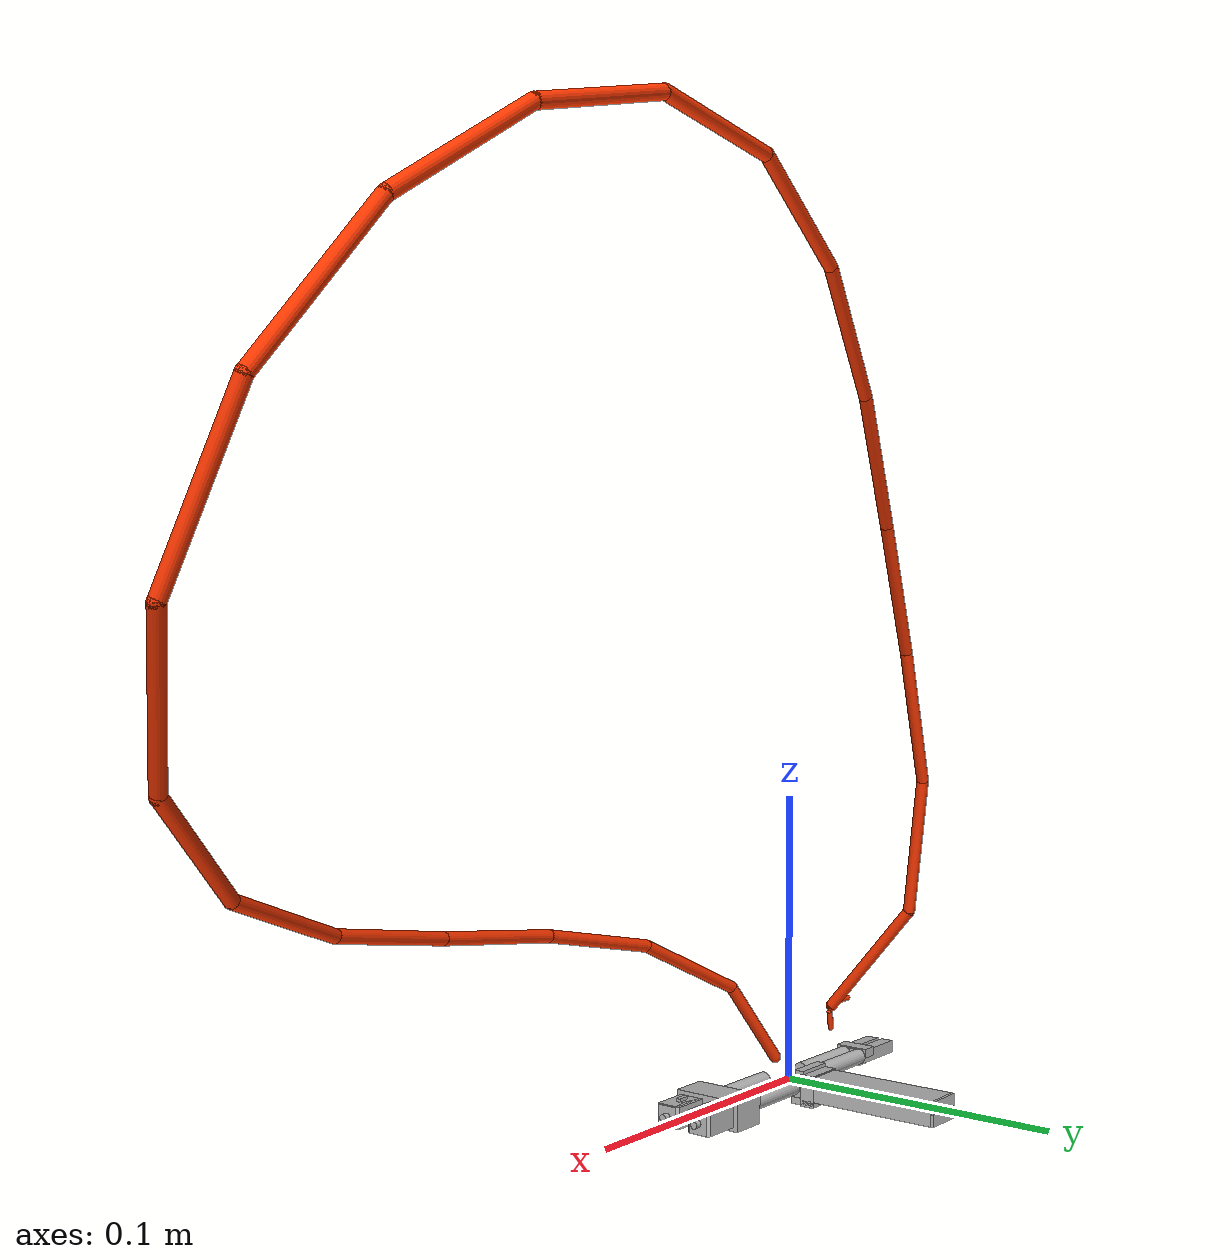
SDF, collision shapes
<?xml version="1.0" ?>
<sdf version="1.9">
  <model name="sfp_sc_cable">
    <include merge="true">
      <!--
         A few links in cable intersect with gripper palm.
         Workaround this by removing their collisions.
      -->
      <experimental:params>
        <collision element_id="link_1::link_1_collision" action="modify">
          <pose>0 0 0.006 0 0 0</pose>
          <geometry>
            <capsule>
              <length>0.032</length>
              <radius>0.002</radius>
            </capsule>
          </geometry>
          <surface>
            <friction>
              <torsional>
                <coefficient>0.05</coefficient>
              </torsional>
              <bullet>
                <friction>0.05</friction>
                <friction2>0.05</friction2>
              </bullet>
            </friction>
          </surface>
        </collision>
        <collision element_id="cable_end_0::base_collision" action="remove"/>
        <collision element_id="cable_connection_0::collision_0" action="remove"/>
        <collision element_id="cable_connection_0::collision_1" action="remove"/>
      </experimental:params>
      <uri>model://cable_base_c_rotated_phase_1</uri>
    </include>
    <include merge="true">
      <!--
         Some collisions in LC Plug intersect with gripper fingers on startup
         Workaround this by removing those collisions.
      -->
      <experimental:params>
        <collision element_id="lc_plug_link::1af02-003-ma2_collider_cylinder" action="remove"/>
        <collision element_id="lc_plug_link::1af02-003-ma2001_collider_cylinder" action="remove"/>
        <collision element_id="lc_plug_link::cube_collider_box.002" action="remove"/>
        <collision element_id="lc_plug_link::cube_collider_box.003" action="remove"/>
        <collision element_id="lc_plug_link::cube001_collider_box.002" action="remove"/>
        <collision element_id="lc_plug_link::cube001_collider_box.003" action="remove"/>
      </experimental:params>
      <uri>model://LC Plug</uri>
      <pose relative_to="cable_connection_0">-0.041 0 0 0 0 1.57079</pose>
    </include>
    <include merge="true">
      <uri>model://SC Plug</uri>
      <pose relative_to="cable_connection_1">0.052 0 0 0 0 0.0</pose>
    </include>
    <include merge="true">
      <!--
         Some collisions in SFP Module intersect with gripper fingers on startup
         Workaround this by removing those collisions.
      -->
      <experimental:params>
        <collision element_id="sfp_module_link::port_collider_box" action="remove"/>
        <collision element_id="sfp_module_link::port_collider_box.001" action="remove"/>
        <collision element_id="sfp_module_link::port_collider_box.002" action="remove"/>
        <collision element_id="sfp_module_link::port_collider_box.003" action="remove"/>
        <collision element_id="sfp_module_link::port_collider_box.004" action="remove"/>
        <collision element_id="sfp_module_link::port_collider_box.005" action="remove"/>
        <collision element_id="sfp_module_link::port_collider_box.006" action="remove"/>
        <collision element_id="sfp_module_link::port_collider_box.007" action="remove"/>
        <collision element_id="sfp_module_link::latch_collider_box" action="remove"/>
        <collision element_id="sfp_module_link::latch_collider_box.001" action="remove"/>
        <collision element_id="sfp_module_link::latch_collider_box.002" action="remove"/>
        <collision element_id="sfp_module_link::latch_collider_box.003" action="remove"/>
        <collision element_id="sfp_module_link::head_collider_box" action="remove"/>
        <collision element_id="sfp_module_link::head_collider_box.001" action="remove"/>
        <collision element_id="sfp_module_link::head_collider_box.002" action="remove"/>
        <collision element_id="sfp_module_link::head_collider_box.003" action="remove"/>
      </experimental:params>
      <uri>model://SFP Module</uri>
      <pose relative_to="lc_plug_link">0 0.0384 0 0 3.14159 3.14159</pose>
    </include>
    <joint name="plug_0_joint" type="fixed">
      <parent>cable_connection_0</parent>
      <child>lc_plug_link</child>
    </joint>
    <joint name="plug_1_joint" type="fixed">
      <parent>cable_connection_1</parent>
      <child>sc_plug_link</child>
    </joint>
    <joint name="sfp_module_joint" type="fixed">
      <parent>lc_plug_link</parent>
      <child>sfp_module_link</child>
    </joint>
  </model>

</sdf>

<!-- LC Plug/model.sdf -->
<sdf version="1.9">
  <model name="LC Plug">
    <link name="lc_plug_link">
      <inertial auto="true">
        <mass>0.010</mass>
      </inertial>
      <visual name="lc_plug_visual">
        <geometry>
          <mesh>
            <uri>lc_plug_visual.glb</uri>
          </mesh>
        </geometry>
      </visual>
      <collision name="cube_collider_box.003">
        <pose>0.003125 0.0097 0.0 -1.570796 1.570796 0.0</pose>
        <geometry>
          <box>
            <size>0.0045 0.0045 0.02</size>
          </box>
        </geometry>
      </collision>
      <collision name="cube_collider_box.002">
        <pose>-0.003125 0.0097 -0.0 -1.570796 1.570796 0.0</pose>
        <geometry>
          <box>
            <size>0.0045 0.0045 0.02</size>
          </box>
        </geometry>
      </collision>
      <collision name="cube001_collider_box.003">
        <pose>-0.0 0.002503 0.001434 -0.0 3.141593 -0.0</pose>
        <geometry>
          <box>
            <size>0.012353 0.0056 0.00325</size>
          </box>
        </geometry>
      </collision>
      <collision name="cube001_collider_box.002">
        <pose>-0.0 0.002503 -0.000413 -0.0 3.141593 -0.0</pose>
        <geometry>
          <box>
            <size>0.00665 0.0056 0.006032</size>
          </box>
        </geometry>
      </collision>
      <collision name="cylinder001_collider_cylinder.001">
        <pose>0.003125 0.0197 0.0 1.570796 0.0 0.0</pose>
        <geometry>
          <cylinder>
            <radius>0.000625</radius>
            <length>0.003004</length>
          </cylinder>
        </geometry>
      </collision>
      <collision name="cylinder_collider_cylinder.001">
        <pose>-0.003125 0.0197 0.0 1.570796 0.0 0.0</pose>
        <geometry>
          <cylinder>
            <radius>0.000625</radius>
            <length>0.003004</length>
          </cylinder>
        </geometry>
      </collision>
      <collision name="1af02-003-ma2_collider_cylinder">
        <pose>0.003125 -0.014628 -0.0 -1.570796 -0.0 -0.0</pose>
        <geometry>
          <cylinder>
            <radius>0.002794</radius>
            <length>0.028702</length>
          </cylinder>
        </geometry>
      </collision>
      <collision name="1af02-003-ma2001_collider_cylinder">
        <pose>-0.003125 -0.014628 -0.0 -1.570796 -0.0 -0.0</pose>
        <geometry>
          <cylinder>
            <radius>0.002794</radius>
            <length>0.028702</length>
          </cylinder>
        </geometry>
      </collision>
    </link>
  </model>
</sdf>

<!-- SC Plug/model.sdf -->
<sdf version="1.9">
  <model name="SC Plug">
    <link name="sc_plug_link">
      <inertial auto="true">
        <mass>0.04</mass>
      </inertial>
      <visual name="sc_plug_visual">
        <geometry>
          <mesh>
            <uri>sc_plug_visual.glb</uri>
          </mesh>
        </geometry>
      </visual>
      <collision name="housing blue_predeterminado005_collider_box">
        <pose>0.002038 0.006344 4e-06 0.0 0.0 0.0</pose>
        <geometry>
          <box>
            <size>0.012721 0.009 0.0073</size>
          </box>
        </geometry>
      </collision>
      <collision name="housing blue_predeterminado005_collider_box.001">
        <pose>0.002038 -0.006344 4e-06 0.0 0.0 0.0</pose>
        <geometry>
          <box>
            <size>0.012721 0.009 0.0073</size>
          </box>
        </geometry>
      </collision>
      <collision name="housing blue_predeterminado005_collider_box.002">
        <pose>0.002539 0.006344 4e-06 0.0 0.0 0.0</pose>
        <geometry>
          <box>
            <size>0.013722 0.007 0.0073</size>
          </box>
        </geometry>
      </collision>
      <collision name="housing blue_predeterminado005_collider_box.003">
        <pose>0.002539 -0.006344 4e-06 0.0 0.0 0.0</pose>
        <geometry>
          <box>
            <size>0.013722 0.007 0.0073</size>
          </box>
        </geometry>
      </collision>
      <collision name="housing blue_predeterminado005_collider_box.004">
        <pose>0.008191 0.003056 4e-06 0.0 -0.0 -0.785398</pose>
        <geometry>
          <box>
            <size>0.002 0.00141 0.0073</size>
          </box>
        </geometry>
      </collision>
      <collision name="housing blue_predeterminado005_collider_box.005">
        <pose>0.008191 0.009636 4e-06 0.0 -0.0 0.785398</pose>
        <geometry>
          <box>
            <size>0.002 0.00141 0.0073</size>
          </box>
        </geometry>
      </collision>
      <collision name="housing blue_predeterminado005_collider_box.006">
        <pose>0.008191 -0.009636 4e-06 0.0 -0.0 -0.785398</pose>
        <geometry>
          <box>
            <size>0.002 0.00141 0.0073</size>
          </box>
        </geometry>
      </collision>
      <collision name="housing blue_predeterminado005_collider_box.007">
        <pose>0.008191 -0.003056 4e-06 0.0 -0.0 0.785398</pose>
        <geometry>
          <box>
            <size>0.002 0.00141 0.0073</size>
          </box>
        </geometry>
      </collision>
      <collision name="cube002_collider_box">
        <pose>-0.010291 0.0 0.0 0.0 0.0 0.0</pose>
        <geometry>
          <box>
            <size>0.01255 0.025 0.0101</size>
          </box>
        </geometry>
      </collision>
      <collision name="cylinder011_collider_cylinder">
        <pose>-0.031147 -0.00635 -0.0 -0.0 1.570796 0.0</pose>
        <geometry>
          <cylinder>
            <radius>0.0029</radius>
            <length>0.02921</length>
          </cylinder>
        </geometry>
      </collision>
      <collision name="cylinder005_collider_cylinder">
        <pose>-0.029953 0.00635 -0.0 -0.0 1.570796 0.0</pose>
        <geometry>
          <cylinder>
            <radius>0.0029</radius>
            <length>0.031598</length>
          </cylinder>
        </geometry>
      </collision>
      <collision name="ferula_predeterminado005_collider_cylinder">
        <pose>0.00465 -0.00635 0.0 -0.0 1.570796 0.0</pose>
        <geometry>
          <cylinder>
            <radius>0.00125</radius>
            <length>0.014</length>
          </cylinder>
        </geometry>
      </collision>
      <collision name="ferula_predeterminado003_collider_cylinder">
        <pose>0.00465 0.00635 0.0 -0.0 1.570796 0.0</pose>
        <geometry>
          <cylinder>
            <radius>0.00125</radius>
            <length>0.014</length>
          </cylinder>
        </geometry>
      </collision>
      <collision name="side_box_collision">
        <pose>0.00146 -0.00632 0.0042 0.0 0.0 0.0</pose>
        <geometry>
          <box>
            <size>0.00425 0.00162 0.001</size>
          </box>
        </geometry>
      </collision>
      <collision name="side_box_collision_2">
        <pose>0.00146 0.00632 0.0042 0.0 0.0 0.0</pose>
        <geometry>
          <box>
            <size>0.00425 0.00162 0.001</size>
          </box>
        </geometry>
      </collision>
    </link>

    <link name="sc_tip_link">
      <pose>0.01165 0 0 -1.5708 0 -1.5708</pose>
      <inertial>
        <mass>1e-3</mass>
        <inertia>
          <ixx>1e-6</ixx>
          <iyy>1e-6</iyy>
          <izz>1e-6</izz>
        </inertia>
      </inertial>
    </link>

    <joint name="sc_tip_joint" type="fixed">
      <parent>sc_plug_link</parent>
      <child>sc_tip_link</child>
    </joint>

  </model>
</sdf>

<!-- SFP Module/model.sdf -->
<sdf version="1.9">
  <model name="SFP Module">
    <link name="sfp_module_link">
      <inertial auto="true">
        <mass>0.02</mass>
      </inertial>
      <visual name="sfp_module_visual">
        <geometry>
          <mesh>
            <uri>sfp_module_visual.glb</uri>
          </mesh>
        </geometry>
      </visual>
      <collision name="port_collider_box">
        <pose>-0.00571 0.022559 -0.00275 1.570796 -0.0 0.0</pose>
        <geometry>
          <box>
            <size>0.00142 0.00075 0.020375</size>
          </box>
        </geometry>
        <surface>
          <friction>
            <torsional>
              <coefficient>0.1</coefficient>
            </torsional>
            <bullet>
              <friction>0.1</friction>
              <friction2>0.1</friction2>
            </bullet>
          </friction>
        </surface>
      </collision>
      <collision name="port_collider_box.001">
        <pose>-0.0 0.022559 -0.00275 1.570796 -0.0 0.0</pose>
        <geometry>
          <box>
            <size>0.0025 0.00075 0.020375</size>
          </box>
        </geometry>
        <surface>
          <friction>
            <torsional>
              <coefficient>0.1</coefficient>
            </torsional>
            <bullet>
              <friction>0.1</friction>
              <friction2>0.1</friction2>
            </bullet>
          </friction>
        </surface>
      </collision>
      <collision name="port_collider_box.002">
        <pose>0.0 0.02732 -0.00447 1.570796 -0.0 0.0</pose>
        <geometry>
          <box>
            <size>0.01284 0.00019 0.007302</size>
          </box>
        </geometry>
        <surface>
          <friction>
            <torsional>
              <coefficient>0.1</coefficient>
            </torsional>
            <bullet>
              <friction>0.1</friction>
              <friction2>0.1</friction2>
            </bullet>
          </friction>
        </surface>
      </collision>
      <collision name="port_collider_box.003">
        <pose>0.00596 0.022559 -8.7e-05 1.570796 -0.0 0.0</pose>
        <geometry>
          <box>
            <size>0.00092 0.008279 0.020375</size>
          </box>
        </geometry>
        <surface>
          <friction>
            <torsional>
              <coefficient>0.1</coefficient>
            </torsional>
            <bullet>
              <friction>0.1</friction>
              <friction2>0.1</friction2>
            </bullet>
          </friction>
        </surface>
      </collision>
      <collision name="port_collider_box.004">
        <pose>0.0 0.022559 0.003049 1.570796 -0.0 0.0</pose>
        <geometry>
          <box>
            <size>0.01284 0.001348 0.020375</size>
          </box>
        </geometry>
        <surface>
          <friction>
            <torsional>
              <coefficient>0.1</coefficient>
            </torsional>
            <bullet>
              <friction>0.1</friction>
              <friction2>0.1</friction2>
            </bullet>
          </friction>
        </surface>
      </collision>
      <collision name="port_collider_box.005">
        <pose>-0.00596 0.022559 -8.7e-05 1.570796 -0.0 0.0</pose>
        <geometry>
          <box>
            <size>0.00092 0.008279 0.020375</size>
          </box>
        </geometry>
        <surface>
          <friction>
            <torsional>
              <coefficient>0.1</coefficient>
            </torsional>
            <bullet>
              <friction>0.1</friction>
              <friction2>0.1</friction2>
            </bullet>
          </friction>
        </surface>
      </collision>
      <collision name="port_collider_box.006">
        <pose>0.00571 0.022559 -0.00275 1.570796 -0.0 0.0</pose>
        <geometry>
          <box>
            <size>0.00142 0.00075 0.020375</size>
          </box>
        </geometry>
        <surface>
          <friction>
            <torsional>
              <coefficient>0.1</coefficient>
            </torsional>
            <bullet>
              <friction>0.1</friction>
              <friction2>0.1</friction2>
            </bullet>
          </friction>
        </surface>
      </collision>
      <collision name="port_collider_box.007">
        <pose>0.0 0.022559 -0.000239 1.570796 -0.0 0.0</pose>
        <geometry>
          <box>
            <size>0.0015 0.007747 0.020375</size>
          </box>
        </geometry>
        <surface>
          <friction>
            <torsional>
              <coefficient>0.1</coefficient>
            </torsional>
            <bullet>
              <friction>0.1</friction>
              <friction2>0.1</friction2>
            </bullet>
          </friction>
        </surface>
      </collision>
      <collision name="port_collider_box.008">
        <pose>-0.00571 0.018813 -0.003546 1.570796 -0.0 0.0</pose>
        <geometry>
          <box>
            <size>0.00142 0.001006 0.012883</size>
          </box>
        </geometry>
        <surface>
          <friction>
            <torsional>
              <coefficient>0.1</coefficient>
            </torsional>
            <bullet>
              <friction>0.1</friction>
              <friction2>0.1</friction2>
            </bullet>
          </friction>
        </surface>
      </collision>
      <collision name="port_collider_box.009">
        <pose>0.00571 0.018813 -0.003546 1.570796 -0.0 0.0</pose>
        <geometry>
          <box>
            <size>0.00142 0.001006 0.012883</size>
          </box>
        </geometry>
        <surface>
          <friction>
            <torsional>
              <coefficient>0.1</coefficient>
            </torsional>
            <bullet>
              <friction>0.1</friction>
              <friction2>0.1</friction2>
            </bullet>
          </friction>
        </surface>
      </collision>
      <collision name="latch_collider_box">
        <pose>0.0 0.029531 -0.005175 1.570796 -0.0 0.0</pose>
        <geometry>
          <box>
            <size>0.01384 0.001601 0.003426</size>
          </box>
        </geometry>
        <surface>
          <friction>
            <torsional>
              <coefficient>0.1</coefficient>
            </torsional>
            <bullet>
              <friction>0.1</friction>
              <friction2>0.1</friction2>
            </bullet>
          </friction>
        </surface>
      </collision>
      <collision name="latch_collider_box.001">
        <pose>0.006405 0.030896 0.000207 1.570796 -0.0 0.0</pose>
        <geometry>
          <box>
            <size>0.001029 0.009544 0.0037</size>
          </box>
        </geometry>
        <surface>
          <friction>
            <torsional>
              <coefficient>0.1</coefficient>
            </torsional>
            <bullet>
              <friction>0.1</friction>
              <friction2>0.1</friction2>
            </bullet>
          </friction>
        </surface>
      </collision>
      <collision name="latch_collider_box.002">
        <pose>0.0 0.030896 0.004716 1.570796 -0.0 0.0</pose>
        <geometry>
          <box>
            <size>0.01384 0.002383 0.0037</size>
          </box>
        </geometry>
        <surface>
          <friction>
            <torsional>
              <coefficient>0.1</coefficient>
            </torsional>
            <bullet>
              <friction>0.1</friction>
              <friction2>0.1</friction2>
            </bullet>
          </friction>
        </surface>
      </collision>
      <collision name="latch_collider_box.003">
        <pose>-0.006437 0.030896 0.000207 1.570796 -0.0 0.0</pose>
        <geometry>
          <box>
            <size>0.000965 0.009544 0.0037</size>
          </box>
        </geometry>
        <surface>
          <friction>
            <torsional>
              <coefficient>0.1</coefficient>
            </torsional>
            <bullet>
              <friction>0.1</friction>
              <friction2>0.1</friction2>
            </bullet>
          </friction>
        </surface>
      </collision>
      <collision name="head_collider_box">
        <pose>0.006358 0.026353 0.000375 1.570796 -0.0 0.0</pose>
        <geometry>
          <box>
            <size>0.001284 0.01025 0.0054</size>
          </box>
        </geometry>
        <surface>
          <friction>
            <torsional>
              <coefficient>0.1</coefficient>
            </torsional>
            <bullet>
              <friction>0.1</friction>
              <friction2>0.1</friction2>
            </bullet>
          </friction>
        </surface>
      </collision>
      <collision name="head_collider_box.001">
        <pose>-0.006358 0.026353 0.000765 1.570796 -0.0 0.0</pose>
        <geometry>
          <box>
            <size>0.001284 0.01097 0.0054</size>
          </box>
        </geometry>
        <surface>
          <friction>
            <torsional>
              <coefficient>0.1</coefficient>
            </torsional>
            <bullet>
              <friction>0.1</friction>
              <friction2>0.1</friction2>
            </bullet>
          </friction>
        </surface>
      </collision>
      <collision name="head_collider_box.002">
        <pose>0.0 0.026353 0.005128 1.570796 -0.0 0.0</pose>
        <geometry>
          <box>
            <size>0.014 0.002245 0.0054</size>
          </box>
        </geometry>
        <surface>
          <friction>
            <torsional>
              <coefficient>0.1</coefficient>
            </torsional>
            <bullet>
              <friction>0.1</friction>
              <friction2>0.1</friction2>
            </bullet>
          </friction>
        </surface>
      </collision>
      <collision name="head_collider_box.003">
        <pose>0.0 0.026353 -0.004563 1.570796 -0.0 0.0</pose>
        <geometry>
          <box>
            <size>0.014 0.000375 0.0054</size>
          </box>
        </geometry>
        <surface>
          <friction>
            <torsional>
              <coefficient>0.1</coefficient>
            </torsional>
            <bullet>
              <friction>0.1</friction>
              <friction2>0.1</friction2>
            </bullet>
          </friction>
        </surface>
      </collision>
      <collision name="body_collider_box">
        <pose>0.0 0.001 0.00383 0.0 0.0 0.0</pose>
        <geometry>
          <box>
            <size>0.01375 0.0473 0.000789</size>
          </box>
        </geometry>
        <surface>
          <friction>
            <torsional>
              <coefficient>0.1</coefficient>
            </torsional>
            <bullet>
              <friction>0.1</friction>
              <friction2>0.1</friction2>
            </bullet>
          </friction>
        </surface>
      </collision>
      <collision name="body_collider_box.001">
        <pose>0.0 0.001 -0.004138 0.0 0.0 0.0</pose>
        <geometry>
          <box>
            <size>0.01375 0.0473 0.000178</size>
          </box>
        </geometry>
        <surface>
          <friction>
            <torsional>
              <coefficient>0.1</coefficient>
            </torsional>
            <bullet>
              <friction>0.1</friction>
              <friction2>0.1</friction2>
            </bullet>
          </friction>
        </surface>
      </collision>
      <collision name="body_collider_box.002">
        <pose>-0.006588 0.001 0.0 0.0 0.0 0.0</pose>
        <geometry>
          <box>
            <size>0.000574 0.0473 0.00845</size>
          </box>
        </geometry>
        <surface>
          <friction>
            <torsional>
              <coefficient>0.1</coefficient>
            </torsional>
            <bullet>
              <friction>0.1</friction>
              <friction2>0.1</friction2>
            </bullet>
          </friction>
        </surface>
      </collision>
      <collision name="body_collider_box.003">
        <pose>0.00647 0.001 0.0 0.0 0.0 0.0</pose>
        <geometry>
          <box>
            <size>0.000811 0.0473 0.00845</size>
          </box>
        </geometry>
        <surface>
          <friction>
            <torsional>
              <coefficient>0.1</coefficient>
            </torsional>
            <bullet>
              <friction>0.1</friction>
              <friction2>0.1</friction2>
            </bullet>
          </friction>
        </surface>
      </collision>
      <collision name="port_collider_box.010">
        <pose>0.0 0.01229 0.000119 1.570796 -0.0 0.0</pose>
        <geometry>
          <box>
            <size>0.01284 0.007763 0.011729</size>
          </box>
        </geometry>
        <surface>
          <friction>
            <torsional>
              <coefficient>0.1</coefficient>
            </torsional>
            <bullet>
              <friction>0.1</friction>
              <friction2>0.1</friction2>
            </bullet>
          </friction>
        </surface>
      </collision>
      <collision name="port_collider_box002_collider_box">
        <pose>0.0 0.024453 -0.004254 1.570796 -0.0 0.0</pose>
        <geometry>
          <box>
            <size>0.01284 0.000409 0.001601</size>
          </box>
        </geometry>
        <surface>
          <friction>
            <torsional>
              <coefficient>0.1</coefficient>
            </torsional>
            <bullet>
              <friction>0.1</friction>
              <friction2>0.1</friction2>
            </bullet>
          </friction>
        </surface>
      </collision>
      <collision name="port_collider_box.011">
        <pose>0.0 0.018813 -0.003546 1.570796 -0.0 0.0</pose>
        <geometry>
          <box>
            <size>0.0025 0.001006 0.012883</size>
          </box>
        </geometry>
        <surface>
          <friction>
            <torsional>
              <coefficient>0.1</coefficient>
            </torsional>
            <bullet>
              <friction>0.1</friction>
              <friction2>0.1</friction2>
            </bullet>
          </friction>
        </surface>
      </collision>
    </link>
    <link name="sfp_tip_link">
      <inertial>
        <mass>1e-3</mass>
        <inertia>
          <ixx>1e-6</ixx>
          <iyy>1e-6</iyy>
          <izz>1e-6</izz>
        </inertia>
      </inertial>
      <collision name="contact_collision">
        <pose>0.0 0.0021125 -0.0005 0 0.0 0.0</pose>
        <geometry>
          <box>
            <size>0.01375 0.004225 0.001</size>
          </box>
        </geometry>
      </collision>
      <collision name="non_contact_collision">
        <pose>0.0 -0.0021125 -0.0005 0 0.0 0.0</pose>
        <geometry>
          <box>
            <size>0.01375 0.004225 0.001</size>
          </box>
        </geometry>
      </collision>
      <pose>0 -0.02365 0 1.5708 0 0</pose>
    </link>
    <joint name="sfp_tip_joint" type="fixed">
      <parent>sfp_module_link</parent>
      <child>sfp_tip_link</child>
    </joint>
  </model>
</sdf>
